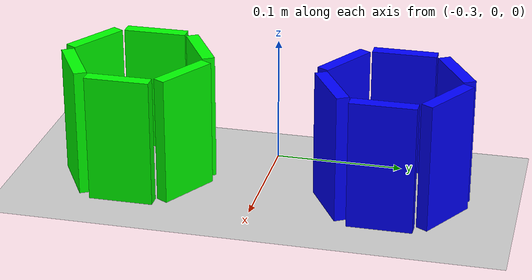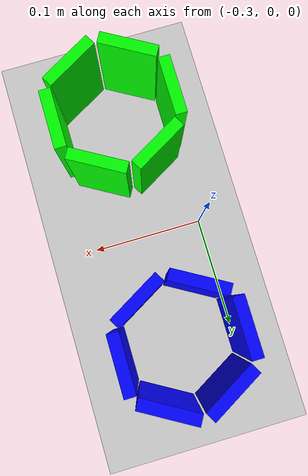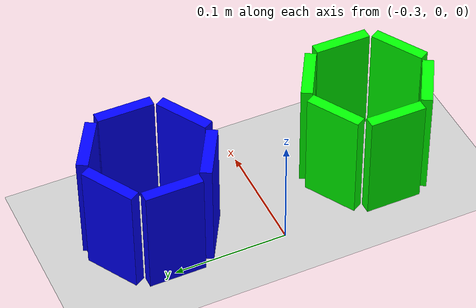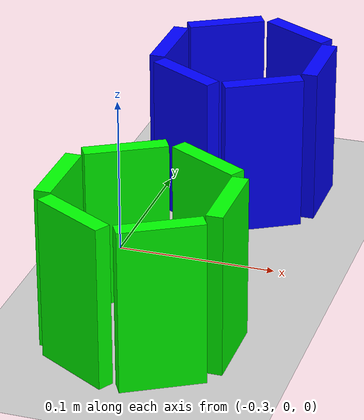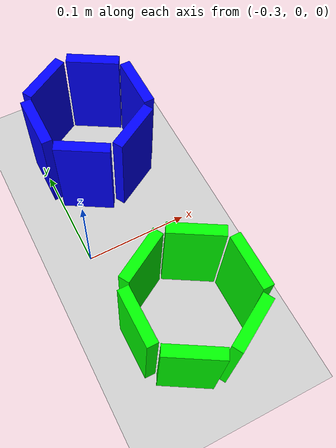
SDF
<?xml version="1.0" ?>
<sdf version="1.6">
  <world name="default">
    <!-- Ground plane -->
    <include>
      <uri>model://ground_plane</uri>
    </include>
    <!-- Sun -->
    <include>
      <uri>model://sun</uri>
    </include>
    <!-- Plugin LinkAttacher como plugin del mundo -->
    <plugin name="gazebo_link_attacher" filename="libgazebo_link_attacher.so">
      <update_rate>10.0</update_rate>
    </plugin>

    <!-- Plugin para publicar estados de modelos -->
    <plugin name="gazebo_ros_state" filename="libgazebo_ros_state.so">
      <ros>
        <namespace>/gazebo</namespace>
        <remapping>model_states:=model_states</remapping>
        <remapping>link_states:=link_states</remapping>
      </ros>
      <update_rate>10.0</update_rate>
    </plugin>

    <!-- Cilindro hueco como "zona" en el mundo -->
    <!-- Hexágono hueco hecho de 6 cajas verdes -->
    <model name="zona_hexagono">
      <static>true</static>
      <!-- Cada caja es una "pared" del hexágono -->
      <!-- Parámetros -->
      <!-- Centro: -0.25, -0.1, altura media: 0.25 -->
      <!-- Radio del hexágono: 0.05 m, largo de cada caja: 0.05 m, ancho: 0.01 m, alto: 0.25 m -->
      <!-- Ángulos: 0, 60, 120, 180, 240, 300 grados -->
      <!-- Caja 1 -->
      <link name="wall1">
        <pose>-0.20 -0.1 0.05 0 0 1.5708</pose>
        <visual name="wall1_visual">
          <geometry>
            <box>
              <size>0.05 0.01 0.1</size>
            </box>
          </geometry>
          <material>
            <ambient>0.0 1.0 0.0 1.0</ambient>
            <diffuse>0.0 1.0 0.0 1.0</diffuse>
          </material>
          <transparency>0.0</transparency>
        </visual>
        <collision name="wall1_collision">
          <geometry>
            <box>
              <size>0.05 0.01 0.1</size>
            </box>
          </geometry>
        </collision>
      </link>
      <!-- Caja 2 -->
      <link name="wall2">
        <pose>-0.225 -0.057 0.05 0 0 2.61799</pose> <!-- 150 grados -->
        <visual name="wall2_visual">
          <geometry>
            <box>
              <size>0.05 0.01 0.1</size>
            </box>
          </geometry>
          <material>
            <ambient>0.0 1.0 0.0 1.0</ambient>
            <diffuse>0.0 1.0 0.0 1.0</diffuse>
          </material>
          <transparency>0.0</transparency>
        </visual>
        <collision name="wall2_collision">
          <geometry>
            <box>
              <size>0.05 0.01 0.1</size>
            </box>
          </geometry>
        </collision>
      </link>
      <!-- Caja 3 -->
      <link name="wall3">
        <pose>-0.275 -0.057 0.05 0 0 3.66519</pose> <!-- 210 grados -->
        <visual name="wall3_visual">
          <geometry>
            <box>
              <size>0.05 0.01 0.1</size>
            </box>
          </geometry>
          <material>
            <ambient>0.0 1.0 0.0 1.0</ambient>
            <diffuse>0.0 1.0 0.0 1.0</diffuse>
          </material>
          <transparency>0.0</transparency>
        </visual>
        <collision name="wall3_collision">
          <geometry>
            <box>
              <size>0.05 0.01 0.1</size>
            </box>
          </geometry>
        </collision>
      </link>
      <!-- Caja 4 -->
      <link name="wall4">
        <pose>-0.30 -0.1 0.05 0 0 4.71239</pose> <!-- 270 grados -->
        <visual name="wall4_visual">
          <geometry>
            <box>
              <size>0.05 0.01 0.1</size>
            </box>
          </geometry>
          <material>
            <ambient>0.0 1.0 0.0 1.0</ambient>
            <diffuse>0.0 1.0 0.0 1.0</diffuse>
          </material>
          <transparency>0.0</transparency>
        </visual>
        <collision name="wall4_collision">
          <geometry>
            <box>
              <size>0.05 0.01 0.1</size>
            </box>
          </geometry>
        </collision>
      </link>
      <!-- Caja 5 -->
      <link name="wall5">
        <pose>-0.275 -0.143 0.05 0 0 5.75959</pose> <!-- 330 grados -->
        <visual name="wall5_visual">
          <geometry>
            <box>
              <size>0.05 0.01 0.1</size>
            </box>
          </geometry>
          <material>
            <ambient>0.0 1.0 0.0 1.0</ambient>
            <diffuse>0.0 1.0 0.0 1.0</diffuse>
          </material>
          <transparency>0.0</transparency>
        </visual>
        <collision name="wall5_collision">
          <geometry>
            <box>
              <size>0.05 0.01 0.1</size>
            </box>
          </geometry>
        </collision>
      </link>
      <!-- Caja 6 -->
      <link name="wall6">
        <pose>-0.225 -0.143 0.05 0 0 0.523599</pose> <!-- 30 grados -->
        <visual name="wall6_visual">
          <geometry>
            <box>
              <size>0.05 0.01 0.1</size>
            </box>
          </geometry>
          <material>
            <ambient>0.0 1.0 0.0 1.0</ambient>
            <diffuse>0.0 1.0 0.0 1.0</diffuse>
          </material>
          <transparency>0.0</transparency>
        </visual>
        <collision name="wall6_collision">
          <geometry>
            <box>
              <size>0.05 0.01 0.1</size>
            </box>
          </geometry>
        </collision>
      </link>
    </model>
    <!-- Hexágono hueco hecho de 6 cajas azules en y=0.1 -->
    <model name="zona_hexagono_azul">
      <static>true</static>
      <!-- Cada caja es una "pared" del hexágono azul -->
      <!-- Centro: -0.25, 0.1, altura media: 0.05 -->
      <!-- Radio del hexágono: 0.05 m, largo de cada caja: 0.05 m, ancho: 0.01 m, alto: 0.1 m -->
      <!-- Caja 1 -->
      <link name="wall1">
        <pose>-0.20 0.1 0.05 0 0 1.5708</pose>
        <visual name="wall1_visual">
          <geometry>
            <box>
              <size>0.05 0.01 0.1</size>
            </box>
          </geometry>
          <material>
            <ambient>0.0 0.0 1.0 1.0</ambient>
            <diffuse>0.0 0.0 1.0 1.0</diffuse>
          </material>
          <transparency>0.0</transparency>
        </visual>
        <collision name="wall1_collision">
          <geometry>
            <box>
              <size>0.05 0.01 0.1</size>
            </box>
          </geometry>
        </collision>
      </link>
      <!-- Caja 2 -->
      <link name="wall2">
        <pose>-0.225 0.143 0.05 0 0 2.61799</pose>
        <visual name="wall2_visual">
          <geometry>
            <box>
              <size>0.05 0.01 0.1</size>
            </box>
          </geometry>
          <material>
            <ambient>0.0 0.0 1.0 1.0</ambient>
            <diffuse>0.0 0.0 1.0 1.0</diffuse>
          </material>
          <transparency>0.0</transparency>
        </visual>
        <collision name="wall2_collision">
          <geometry>
            <box>
              <size>0.05 0.01 0.1</size>
            </box>
          </geometry>
        </collision>
      </link>
      <!-- Caja 3 -->
      <link name="wall3">
        <pose>-0.275 0.143 0.05 0 0 3.66519</pose>
        <visual name="wall3_visual">
          <geometry>
            <box>
              <size>0.05 0.01 0.1</size>
            </box>
          </geometry>
          <material>
            <ambient>0.0 0.0 1.0 1.0</ambient>
            <diffuse>0.0 0.0 1.0 1.0</diffuse>
          </material>
          <transparency>0.0</transparency>
        </visual>
        <collision name="wall3_collision">
          <geometry>
            <box>
              <size>0.05 0.01 0.1</size>
            </box>
          </geometry>
        </collision>
      </link>
      <!-- Caja 4 -->
      <link name="wall4">
        <pose>-0.30 0.1 0.05 0 0 4.71239</pose>
        <visual name="wall4_visual">
          <geometry>
            <box>
              <size>0.05 0.01 0.1</size>
            </box>
          </geometry>
          <material>
            <ambient>0.0 0.0 1.0 1.0</ambient>
            <diffuse>0.0 0.0 1.0 1.0</diffuse>
          </material>
          <transparency>0.0</transparency>
        </visual>
        <collision name="wall4_collision">
          <geometry>
            <box>
              <size>0.05 0.01 0.1</size>
            </box>
          </geometry>
        </collision>
      </link>
      <!-- Caja 5 -->
      <link name="wall5">
        <pose>-0.275 0.057 0.05 0 0 5.75959</pose>
        <visual name="wall5_visual">
          <geometry>
            <box>
              <size>0.05 0.01 0.1</size>
            </box>
          </geometry>
          <material>
            <ambient>0.0 0.0 1.0 1.0</ambient>
            <diffuse>0.0 0.0 1.0 1.0</diffuse>
          </material>
          <transparency>0.0</transparency>
        </visual>
        <collision name="wall5_collision">
          <geometry>
            <box>
              <size>0.05 0.01 0.1</size>
            </box>
          </geometry>
        </collision>
      </link>
      <!-- Caja 6 -->
      <link name="wall6">
        <pose>-0.225 0.057 0.05 0 0 0.523599</pose>
        <visual name="wall6_visual">
          <geometry>
            <box>
              <size>0.05 0.01 0.1</size>
            </box>
          </geometry>
          <material>
            <ambient>0.0 0.0 1.0 1.0</ambient>
            <diffuse>0.0 0.0 1.0 1.0</diffuse>
          </material>
          <transparency>0.0</transparency>
        </visual>
        <collision name="wall6_collision">
          <geometry>
            <box>
              <size>0.05 0.01 0.1</size>
            </box>
          </geometry>
        </collision>
      </link>
    </model>

    <!-- Add any other default elements here -->
  </world>
</sdf>
